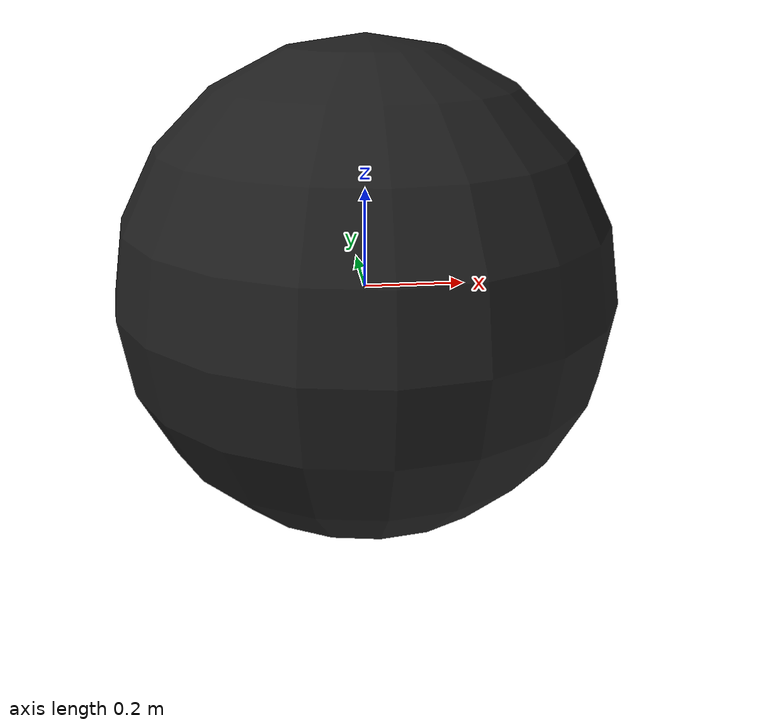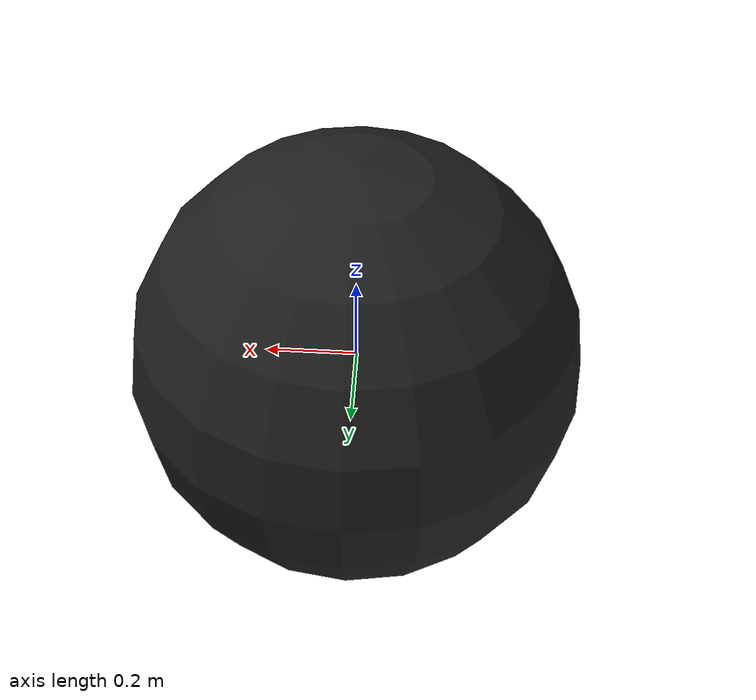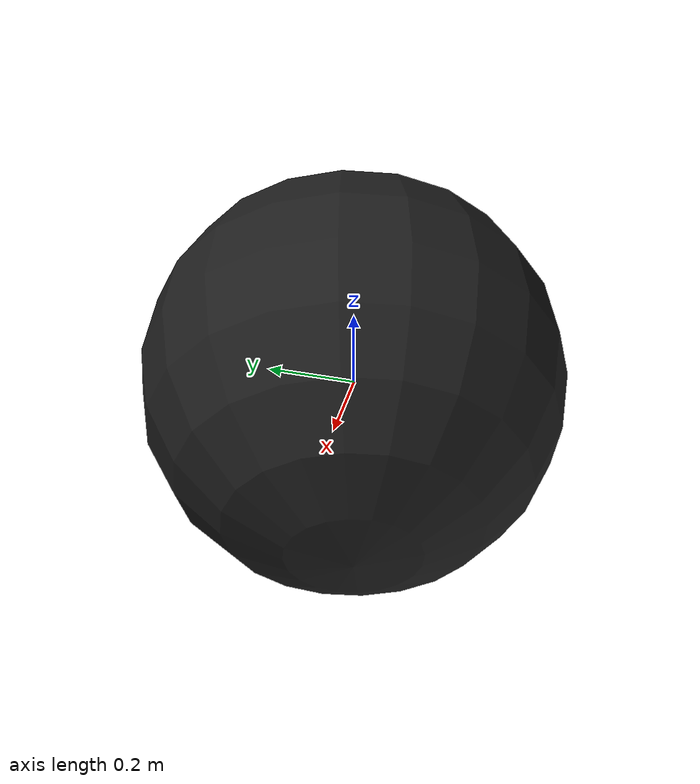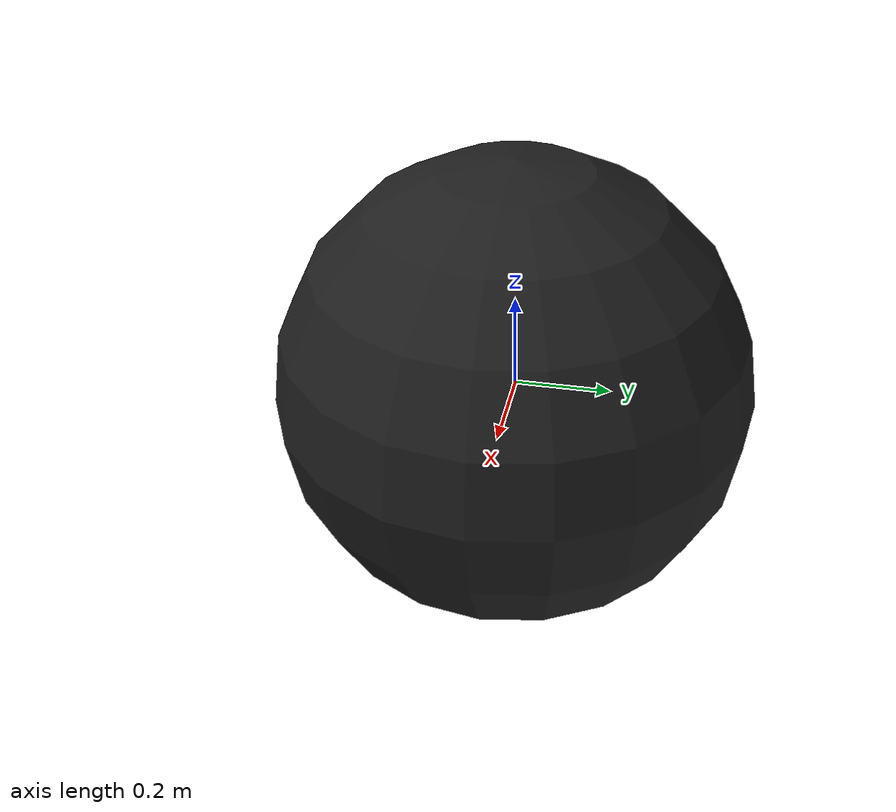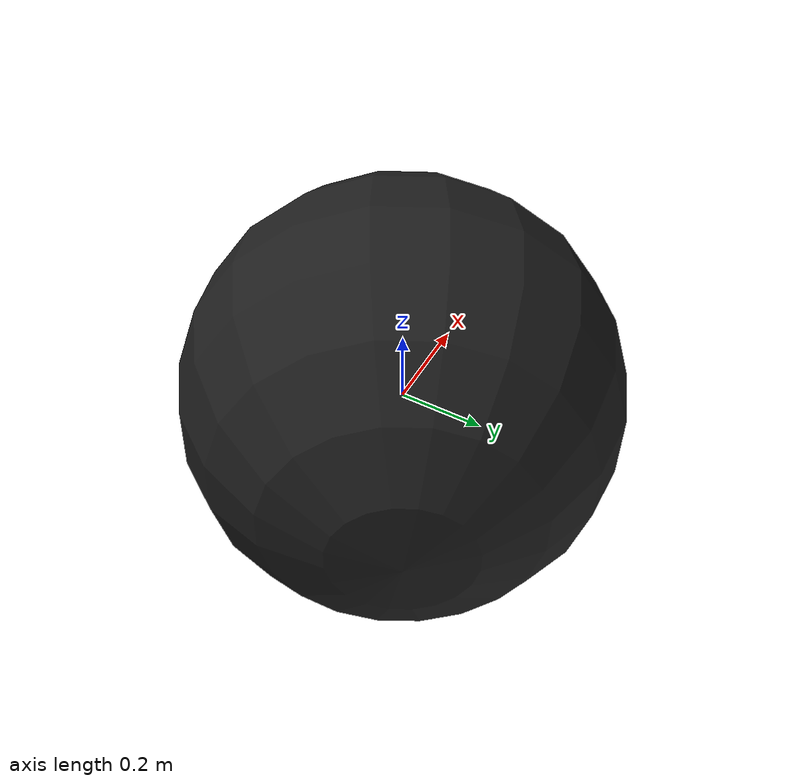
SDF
<?xml version="1.0"?>
<sdf version="1.6">
  <!-- Reference: https://www.polyformus.com/buoys/a-series -->
  <model name="polyform_a7">
    <static>false</static>
    <pose>0 0 0 0 0 0</pose>
    <link name="base_link">
      <inertial>
        <!-- Reference: https://www.sailrite.com/PDF/Polyform-Buoys-Fenders-Accessories.pdf, page 8 -->
        <mass>24.49</mass>
      </inertial>
      <visual name="visual">
        <geometry>
          <sphere><radius>0.4955</radius></sphere>
        </geometry>
        <material>
          <script>
            <uri>file://media/materials/scripts/gazebo.material</uri>
            <name>Gazebo/Black</name>
          </script>
          <ambient>1 0 0 1</ambient>
          <diffuse>1 0 0 1</diffuse>
          <specular>0.1 0.1 0.1 1</specular>
          <emissive>0 0 0 0</emissive>
        </material>
      </visual>
      <collision name="collision">
        <geometry>
          <sphere><radius>0.4955</radius></sphere>
        </geometry>
      </collision>
    </link>

    <plugin name="BuoyancyPlugin" filename="libbuoyancy_gazebo_plugin.so">
      <wave_model>ocean_waves</wave_model>
      <fluid_density>1000</fluid_density>
      <fluid_level>0.0</fluid_level>
      <linear_drag>20.0</linear_drag>
      <angular_drag>2.0</angular_drag>
      <buoyancy name="buoyancy">
        <link_name>base_link</link_name>
        <geometry>
          <sphere><radius>0.4955</radius></sphere>
        </geometry>
      </buoyancy>
    </plugin>

  </model>
</sdf>
